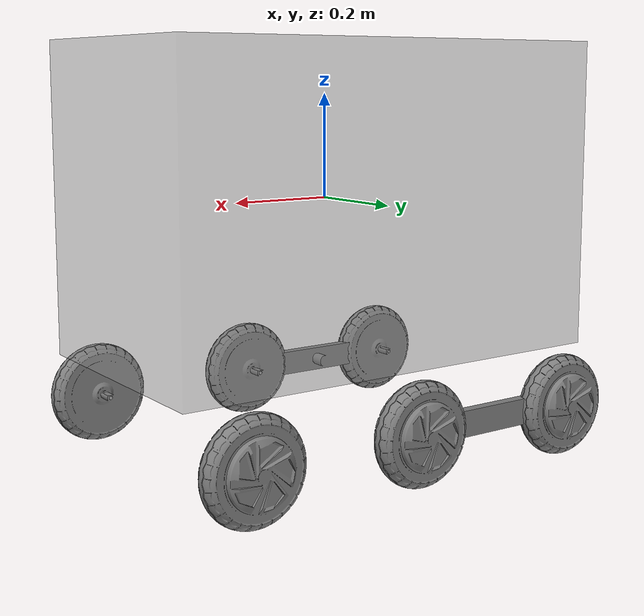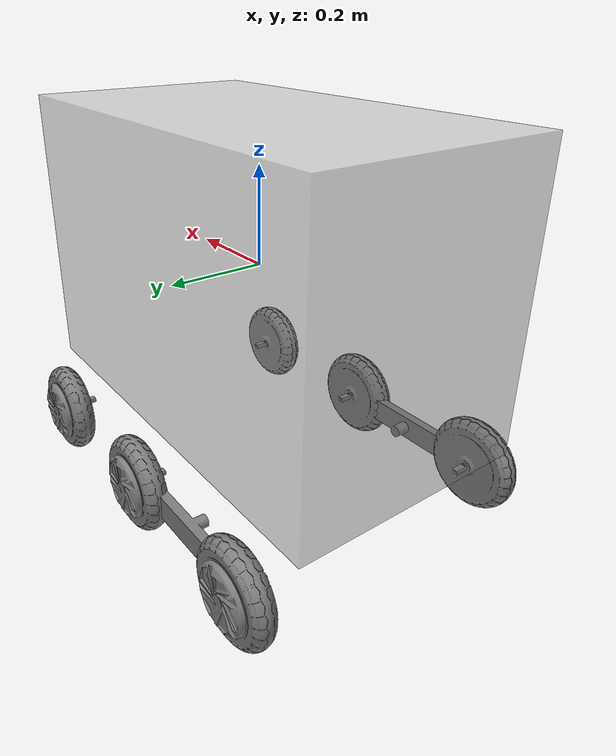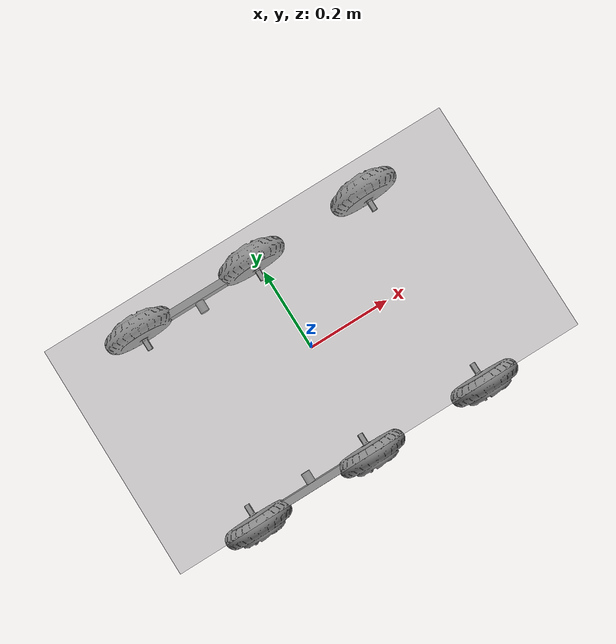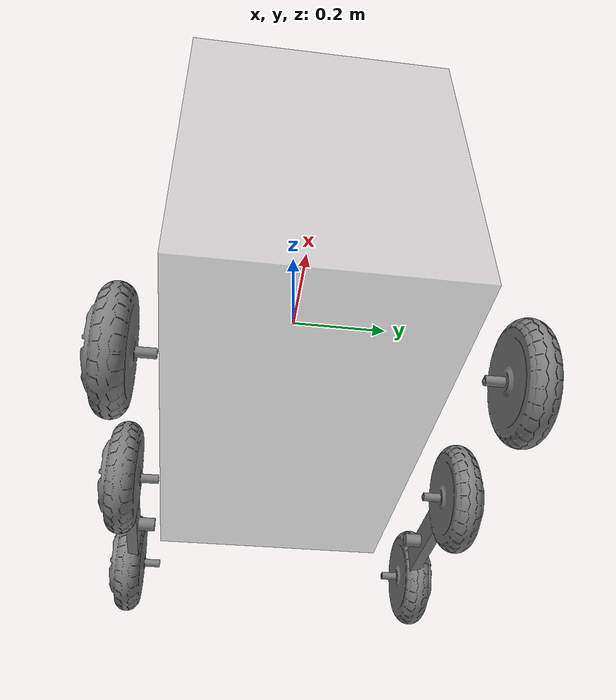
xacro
<?xml version="1.0"?>
<robot name="delivery_robot" xmlns:xacro="http://ros.org/wiki/xacro">

  <!-- Właściwości -->
  <xacro:property name="body_length" value="0.9"/>
  <xacro:property name="body_width" value="0.5"/>
  <xacro:property name="body_height" value="0.6"/>
  <xacro:property name="wheel_radius" value="0.1016"/>
  <xacro:property name="wheel_width" value="0.05"/>
  <xacro:property name="wheel_gap" value="0.35"/>
  <xacro:property name="wheel_y_offset" value="${0.5 * body_width + 0.05}"/>
  <xacro:property name="z_offset" value="${-0.5 * body_height - 0.1}"/>
  <xacro:property name="wheel_mass" value="3.0"/>
  <xacro:property name="pkg_path" value="$(find boxygo)"/>

  <!-- Materiały -->
  <material name="black"><color rgba="0 0 0 1"/></material>
  <material name="white"><color rgba="0.7 0.7 0.7 0.5"/></material>
  <material name="grey"><color rgba="0.5 0.5 0.5 1"/></material>

  <!-- Korpus -->
  <link name="base_link">
    <visual>
      <geometry>
        <box size="${body_length} ${body_width} ${body_height}"/>
      </geometry>
      <material name="white"/>
    </visual>
    <collision>
      <geometry>
        <box size="${body_length} ${body_width} ${body_height}"/>
      </geometry>
    </collision>
    <inertial>
      <mass value="20"/>
      <inertia ixx="1" ixy="0" ixz="0" iyy="1" iyz="0" izz="1"/>
    </inertial>
  </link>

  <!-- Makro koła -->
  <xacro:macro name="wheel" params="side parent_link wheel_side_sign joint_sign index x_offset">
    <xacro:property name="ixx" value="${(1.0/12.0) * wheel_mass * (3 * wheel_radius**2 + wheel_width**2)}"/>
    <xacro:property name="izz" value="${0.5 * wheel_mass * wheel_radius**2}"/>
    <link name="${side}_wheel_${index}">
      <inertial>
        <mass value="${wheel_mass}"/>
        <inertia ixx="${ixx}" iyy="${ixx}" izz="${izz}" ixy="0.0" ixz="0.0" iyz="0.0"/>
      </inertial>
      <visual>
        <geometry>
          <mesh filename="${pkg_path}/meshes/hov_wheel_short_look.stl" scale="0.001 0.001 0.001"/>
        </geometry>
        <origin xyz="0 0 0" rpy="0 0 ${wheel_side_sign * math.pi}"/>
        <material name="grey"/>
      </visual>
      <collision>
        <geometry>
          <mesh filename="${pkg_path}/meshes/hov_wheel_short_colision.stl" scale="0.001 0.001 0.001"/>
        </geometry>
        <origin xyz="0 0 0" rpy="0 0 ${wheel_side_sign * math.pi}"/>
      </collision>
    </link>
    <gazebo reference="${side}_wheel_${index}">
      <mu1>1.0</mu1>
      <mu2>1.0</mu2>
      <kp>100000.0</kp>
      <kd>10.0</kd>
      <minDepth>0.001</minDepth>
      <maxVel>0.01</maxVel>
    </gazebo>
    <joint name="${side}_wheel_${index}_joint" type="continuous">
      <parent link="${parent_link}"/>
      <child link="${side}_wheel_${index}"/>
      <origin xyz="${x_offset} ${joint_sign * wheel_y_offset} ${z_offset}" rpy="0 0 0"/>
      <axis xyz="0 1 0"/>
      <limit effort="10.0" velocity="10.0"/>
      <dynamics damping="0.1" friction="0.1"/>
    </joint>
    <transmission name="${side}_wheel_${index}_trans">
    <type>transmission_interface/SimpleTransmission</type>
    <joint name="${side}_wheel_${index}_joint">
      <hardwareInterface>hardware_interface/VelocityJointInterface</hardwareInterface>
    </joint>
    <actuator name="${side}_wheel_${index}_motor">
      <hardwareInterface>hardware_interface/VelocityJointInterface</hardwareInterface>
      <mechanicalReduction>1</mechanicalReduction>
    </actuator>
  </transmission>
  </xacro:macro>

  <xacro:macro name="wheel_beam" params="side beam_link wheel_side_sign index x_offset y_offset">
    <xacro:property name="ixx" value="${(1.0/12.0) * wheel_mass * (3 * wheel_radius**2 + wheel_width**2)}"/>
    <xacro:property name="izz" value="${0.5 * wheel_mass * wheel_radius**2}"/>
    <link name="${side}_wheel_${index}">
      <inertial>
        <mass value="${wheel_mass}"/>
        <inertia ixx="${ixx}" iyy="${ixx}" izz="${izz}" ixy="0.0" ixz="0.0" iyz="0.0"/>
      </inertial>
      <visual>
        <geometry>
          <mesh filename="${pkg_path}/meshes/hov_wheel_short_look.stl" scale="0.001 0.001 0.001"/>
        </geometry>
        <origin xyz="0 0 0" rpy="0 0 ${wheel_side_sign * math.pi}"/>
        <material name="grey"/>
      </visual>
      <collision>
        <geometry>
          <mesh filename="${pkg_path}/meshes/hov_wheel_short_colision.stl" scale="0.001 0.001 0.001"/>
        </geometry>
        <origin xyz="0 0 0" rpy="0 0 ${wheel_side_sign * math.pi}"/>
      </collision>
    </link>
    <gazebo reference="${side}_wheel_${index}">
      <mu1>1.0</mu1>
      <mu2>1.0</mu2>
      <kp>100000.0</kp>
      <kd>10.0</kd>
      <minDepth>0.001</minDepth>
      <maxVel>0.01</maxVel>
    </gazebo>
    <joint name="${side}_wheel_${index}_joint" type="continuous">
      <parent link="${beam_link}"/>
      <child link="${side}_wheel_${index}"/>
      <origin xyz="${x_offset} ${y_offset} 0" rpy="0 0 0"/>
      <axis xyz="0 1 0"/>
      <limit effort="10.0" velocity="10.0"/>
      <dynamics damping="0.1" friction="0.1"/>
    </joint>
    <transmission name="${side}_wheel_${index}_trans">
      <type>transmission_interface/SimpleTransmission</type>
      <joint name="${side}_wheel_${index}_joint">
        <hardwareInterface>hardware_interface/VelocityJointInterface</hardwareInterface>
      </joint>
      <actuator name="${side}_wheel_${index}_motor">
        <hardwareInterface>hardware_interface/VelocityJointInterface</hardwareInterface>
        <mechanicalReduction>1</mechanicalReduction>
      </actuator>
    </transmission>
  </xacro:macro>

  <link name="left_rocker_beam">
    <inertial>
      <mass value="0.8"/>
      <inertia ixx="0.01" iyy="0.01" izz="0.01" ixy="0" ixz="0" iyz="0"/>
    </inertial>
    <visual>
      <geometry>
        <mesh filename="${pkg_path}/meshes/rocker_model.stl" scale="0.001 0.001 0.001"/>
      </geometry>
      <origin xyz="0 0 0" rpy="0 0 0"/>
      <material name="grey"/>
    </visual>
    <collision>
      <geometry>
        <mesh filename="${pkg_path}/meshes/rocker_model.stl" scale="0.001 0.001 0.001"/>
      </geometry>
      <origin xyz="0 0 0" rpy="0 0 0"/>
    </collision>
  </link>

  <joint name="left_rocker_beam_joint" type="continuous">
    <parent link="base_link"/>
    <child link="left_rocker_beam"/>
    <origin xyz="-0.175 ${wheel_y_offset} ${z_offset}" rpy="0 0 0"/>
    <axis xyz="0 1 0"/>
    <limit effort="10.0" velocity="10.0"/>
    <dynamics damping="0.1" friction="0.1"/>
  </joint>

  <link name="right_rocker_beam">
  <inertial>
    <mass value="0.8"/>
    <inertia ixx="0.01" iyy="0.01" izz="0.01" ixy="0" ixz="0" iyz="0"/>
  </inertial>
  <visual>
    <geometry>
      <mesh filename="${pkg_path}/meshes/rocker_model.stl" scale="0.001 0.001 0.001"/>
    </geometry>
    <origin xyz="0 0 0" rpy="0 0 ${math.pi}"/>
    <material name="grey"/>
  </visual>
  <collision>
    <geometry>
      <mesh filename="${pkg_path}/meshes/rocker_model.stl" scale="0.001 0.001 0.001"/>
    </geometry>
    <origin xyz="0 0 0" rpy="0 0 ${math.pi}"/>
  </collision>
</link>
<joint name="right_rocker_beam_joint" type="continuous">
  <parent link="base_link"/>
  <child link="right_rocker_beam"/>
  <origin xyz="-0.175 ${-wheel_y_offset} ${z_offset}" rpy="0 0 0"/>
  <axis xyz="0 1 0"/>
  <limit effort="10.0" velocity="10.0"/>
  <dynamics damping="0.1" friction="0.1"/>
</joint>

<xacro:macro name="wheel_universal" params="side parent_link wheel_side_sign index x_offset y_offset z_offset">
  <xacro:property name="ixx" value="${(1.0/12.0) * wheel_mass * (3 * wheel_radius**2 + wheel_width**2)}"/>
  <xacro:property name="izz" value="${0.5 * wheel_mass * wheel_radius**2}"/>
  <link name="${side}_wheel_${index}">
    <inertial>
      <mass value="${wheel_mass}"/>
      <inertia ixx="${ixx}" iyy="${ixx}" izz="${izz}" ixy="0.0" ixz="0.0" iyz="0.0"/>
    </inertial>
    <visual>
      <geometry>
        <mesh filename="${pkg_path}/meshes/hov_wheel_short_look.stl" scale="0.001 0.001 0.001"/>
      </geometry>
      <origin xyz="0 0 0" rpy="0 0 ${wheel_side_sign * math.pi}"/>
      <material name="grey"/>
    </visual>
    <collision>
      <geometry>
        <mesh filename="${pkg_path}/meshes/hov_wheel_short_colision.stl" scale="0.001 0.001 0.001"/>
      </geometry>
      <origin xyz="0 0 0" rpy="0 0 ${wheel_side_sign * math.pi}"/>
    </collision>
  </link>
  <gazebo reference="${side}_wheel_${index}">
    <mu1>1.0</mu1>
    <mu2>1.0</mu2>
    <kp>100000.0</kp>
    <kd>10.0</kd>
    <minDepth>0.001</minDepth>
    <maxVel>0.01</maxVel>
  </gazebo>
  <joint name="${side}_wheel_${index}_joint" type="continuous">
    <parent link="${parent_link}"/>
    <child link="${side}_wheel_${index}"/>
    <origin xyz="${x_offset} ${y_offset} ${z_offset}" rpy="0 0 0"/>
    <axis xyz="0 1 0"/>
    <limit effort="10.0" velocity="10.0"/>
    <dynamics damping="0.1" friction="0.1"/>
  </joint>
  <transmission name="${side}_wheel_${index}_trans">
    <type>transmission_interface/SimpleTransmission</type>
    <joint name="${side}_wheel_${index}_joint">
      <hardwareInterface>hardware_interface/VelocityJointInterface</hardwareInterface>
    </joint>
    <actuator name="${side}_wheel_${index}_motor">
      <hardwareInterface>hardware_interface/VelocityJointInterface</hardwareInterface>
      <mechanicalReduction>1</mechanicalReduction>
    </actuator>
  </transmission>
</xacro:macro>

<!-- Koła LEWE: -->
<!-- 1. Koło przy base_link (lewa strona) -->
<xacro:wheel_universal
    side="left"
    parent_link="base_link"
    wheel_side_sign="0"
    index="1"
    x_offset="${wheel_gap}"
    y_offset="${wheel_y_offset}"
    z_offset="${z_offset}"/>

<!-- 2. Koło przy left_rocker_beam (lewa strona, środek) -->
<xacro:wheel_universal
    side="left"
    parent_link="left_rocker_beam"
    wheel_side_sign="0"
    index="2"
    x_offset="0.175"
    y_offset="0"
    z_offset="0"/>

<!-- 3. Koło przy left_rocker_beam (lewa strona, tył) -->
<xacro:wheel_universal
    side="left"
    parent_link="left_rocker_beam"
    wheel_side_sign="0"
    index="3"
    x_offset="-0.175"
    y_offset="0"
    z_offset="0"/>

<!-- Koła PRAWE: -->
<!-- 1. Koło przy base_link (prawa strona) -->
<xacro:wheel_universal
    side="right"
    parent_link="base_link"
    wheel_side_sign="1"
    index="1"
    x_offset="${wheel_gap}"
    y_offset="-${wheel_y_offset}"
    z_offset="${z_offset}"/>

<!-- 2. Koło przy right_rocker_beam (prawa strona, środek) -->
<xacro:wheel_universal
    side="right"
    parent_link="right_rocker_beam"
    wheel_side_sign="1"
    index="2"
    x_offset="0.175"
    y_offset="0"
    z_offset="0"/>

<!-- 3. Koło przy right_rocker_beam (prawa strona, tył) -->
<xacro:wheel_universal
    side="right"
    parent_link="right_rocker_beam"
    wheel_side_sign="1"
    index="3"
    x_offset="-0.175"
    y_offset="0"
    z_offset="0"/>

  <!-- Gazebo - kolor -->
  <gazebo reference="base_link">
    <material>Gazebo/White</material>
  </gazebo>
  <gazebo reference="left_wheel_1">
    <material>Gazebo/Grey</material>
  </gazebo>
  <gazebo reference="left_wheel_2">
    <material>Gazebo/Grey</material>
  </gazebo>
  <gazebo reference="left_wheel_3">
    <material>Gazebo/Grey</material>
  </gazebo>
  <gazebo reference="right_wheel_1">
    <material>Gazebo/Grey</material>
  </gazebo>
  <gazebo reference="right_wheel_2">
    <material>Gazebo/Grey</material>
  </gazebo>
  <gazebo reference="right_wheel_3">
    <material>Gazebo/Grey</material>
  </gazebo>

  <!-- Plugin ros2_control -->
  <gazebo>
    <plugin name="gazebo_ros2_control" filename="libgazebo_ros2_control.so">
      <update_rate>30</update_rate>
      <parameters>${pkg_path}/config/diff_drive_controller_v1.yaml</parameters>
    </plugin>
  </gazebo>

  <!-- ros2_control hardware -->
  <ros2_control name="BoxyGoSystem" type="system">
    <hardware>
      <plugin>gazebo_ros2_control/GazeboSystem</plugin>
    </hardware>
    <joint name="left_wheel_1_joint">
      <command_interface name="velocity"/>
      <state_interface name="position"/>
      <state_interface name="velocity"/>
    </joint>
    <joint name="left_wheel_2_joint">
      <command_interface name="velocity"/>
      <state_interface name="position"/>
      <state_interface name="velocity"/>
    </joint>
    <joint name="left_wheel_3_joint">
      <command_interface name="velocity"/>
      <state_interface name="position"/>
      <state_interface name="velocity"/>
    </joint>
    <joint name="right_wheel_1_joint">
      <command_interface name="velocity"/>
      <state_interface name="position"/>
      <state_interface name="velocity"/>
    </joint>
    <joint name="right_wheel_2_joint">
      <command_interface name="velocity"/>
      <state_interface name="position"/>
      <state_interface name="velocity"/>
    </joint>
    <joint name="right_wheel_3_joint">
      <command_interface name="velocity"/>
      <state_interface name="position"/>
      <state_interface name="velocity"/>
    </joint>
  </ros2_control>

</robot>
